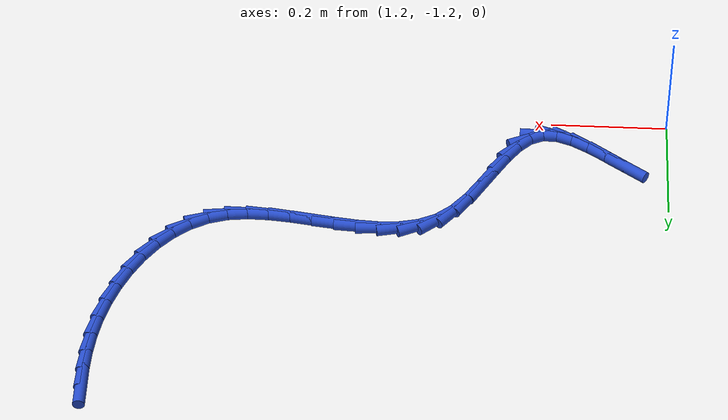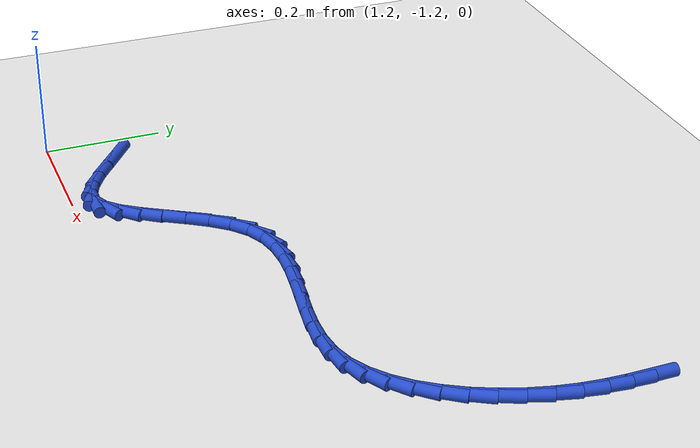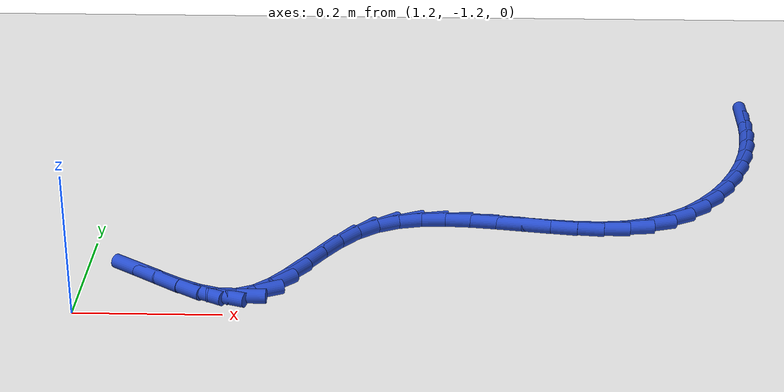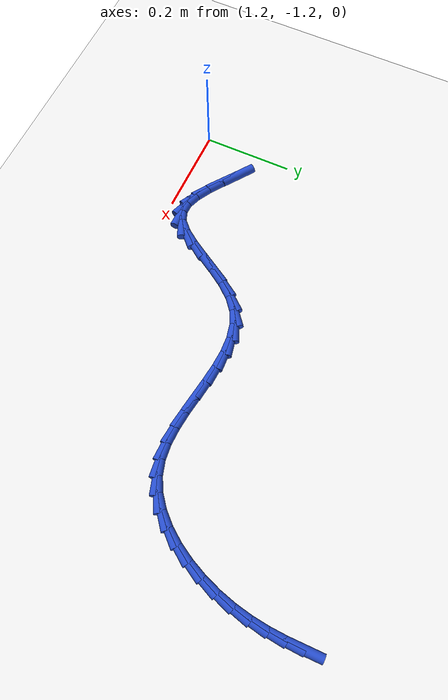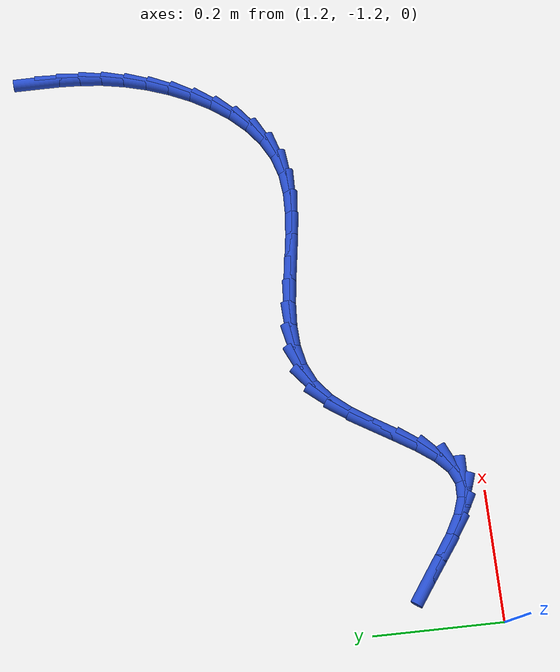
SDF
<sdf version="1.6">
 <world name="default">
  <model name="ground_plane">
   <static>1</static>
   <link name="link">
    <collision name="collision">
     <geometry><plane><normal>0 0 1</normal><size>100 100</size></plane></geometry>
     <surface><friction><ode><mu>100</mu><mu2>50</mu2></ode></friction></surface>
    </collision>
    <visual name="visual">
     <cast_shadows>0</cast_shadows>
     <geometry><plane><normal>0 0 1</normal><size>100 100</size></plane></geometry>
     <material>
      <script><uri>file://media/materials/scripts/gazebo.material</uri><name>Gazebo/WhiteGlow</name></script>
     </material>
    </visual>
   </link>
  </model>
  <model name="line">
   <link name="link_131">
    <pose>2.149427050742619 -0.5623251771961122 0.01 0 1.57 -1.5558904530222313</pose>
    <collision name="collision">
     <geometry><cylinder><radius>0.01</radius><length>0.08</length></cylinder></geometry>
    </collision>
    <visual name="visual">
     <material>
      <script><name>Gazebo/Blue</name><uri>file://media/materials/scripts/gazebo.material</uri></script>
     </material>
     <geometry><cylinder><radius>0.01</radius><length>0.08</length></cylinder></geometry>
    </visual>
   </link>
   <link name="link_132">
    <pose>2.1499527398226106 -0.5975898087104652 0.01 0 1.57 1.5350946256101157</pose>
    <collision name="collision">
     <geometry><cylinder><radius>0.01</radius><length>0.08</length></cylinder></geometry>
    </collision>
    <visual name="visual">
     <material>
      <script><name>Gazebo/Blue</name><uri>file://media/materials/scripts/gazebo.material</uri></script>
     </material>
     <geometry><cylinder><radius>0.01</radius><length>0.08</length></cylinder></geometry>
    </visual>
   </link>
   <link name="link_133">
    <pose>2.1486809618925897 -0.6331970067151078 0.01 0 1.57 1.4717896424177106</pose>
    <collision name="collision">
     <geometry><cylinder><radius>0.01</radius><length>0.08</length></cylinder></geometry>
    </collision>
    <visual name="visual">
     <material>
      <script><name>Gazebo/Blue</name><uri>file://media/materials/scripts/gazebo.material</uri></script>
     </material>
     <geometry><cylinder><radius>0.01</radius><length>0.08</length></cylinder></geometry>
    </visual>
   </link>
   <link name="link_134">
    <pose>2.1451028321051258 -0.6692191281908983 0.01 0 1.57 1.3974444540627173</pose>
    <collision name="collision">
     <geometry><cylinder><radius>0.01</radius><length>0.08</length></cylinder></geometry>
    </collision>
    <visual name="visual">
     <material>
      <script><name>Gazebo/Blue</name><uri>file://media/materials/scripts/gazebo.material</uri></script>
     </material>
     <geometry><cylinder><radius>0.01</radius><length>0.08</length></cylinder></geometry>
    </visual>
   </link>
   <link name="link_135">
    <pose>2.1387097735405796 -0.7057280554204465 0.01 0 1.57 1.3166770986733027</pose>
    <collision name="collision">
     <geometry><cylinder><radius>0.01</radius><length>0.08</length></cylinder></geometry>
    </collision>
    <visual name="visual">
     <material>
      <script><name>Gazebo/Blue</name><uri>file://media/materials/scripts/gazebo.material</uri></script>
     </material>
     <geometry><cylinder><radius>0.01</radius><length>0.08</length></cylinder></geometry>
    </visual>
   </link>
   <link name="link_136">
    <pose>2.129141360175407 -0.7425672828183761 0.01 0 1.57 1.23480271486897</pose>
    <collision name="collision">
     <geometry><cylinder><radius>0.01</radius><length>0.08</length></cylinder></geometry>
    </collision>
    <visual name="visual">
     <material>
      <script><name>Gazebo/Blue</name><uri>file://media/materials/scripts/gazebo.material</uri></script>
     </material>
     <geometry><cylinder><radius>0.01</radius><length>0.08</length></cylinder></geometry>
    </visual>
   </link>
   <link name="link_137">
    <pose>2.116422615321883 -0.7789861001448539 0.01 0 1.57 1.1488030224359165</pose>
    <collision name="collision">
     <geometry><cylinder><radius>0.01</radius><length>0.08</length></cylinder></geometry>
    </collision>
    <visual name="visual">
     <material>
      <script><name>Gazebo/Blue</name><uri>file://media/materials/scripts/gazebo.material</uri></script>
     </material>
     <geometry><cylinder><radius>0.01</radius><length>0.08</length></cylinder></geometry>
    </visual>
   </link>
   <link name="link_138">
    <pose>2.100640446960835 -0.8141383964038998 0.01 0 1.57 1.0544181953158507</pose>
    <collision name="collision">
     <geometry><cylinder><radius>0.01</radius><length>0.08</length></cylinder></geometry>
    </collision>
    <visual name="visual">
     <material>
      <script><name>Gazebo/Blue</name><uri>file://media/materials/scripts/gazebo.material</uri></script>
     </material>
     <geometry><cylinder><radius>0.01</radius><length>0.08</length></cylinder></geometry>
    </visual>
   </link>
   <link name="link_139">
    <pose>2.0818817630730875 -0.8471780605995347 0.01 0 1.57 0.9469916291609757</pose>
    <collision name="collision">
     <geometry><cylinder><radius>0.01</radius><length>0.08</length></cylinder></geometry>
    </collision>
    <visual name="visual">
     <material>
      <script><name>Gazebo/Blue</name><uri>file://media/materials/scripts/gazebo.material</uri></script>
     </material>
     <geometry><cylinder><radius>0.01</radius><length>0.08</length></cylinder></geometry>
    </visual>
   </link>
   <link name="link_140">
    <pose>2.0602334716394695 -0.877258981735777 0.01 0 1.57 0.8213610060553331</pose>
    <collision name="collision">
     <geometry><cylinder><radius>0.01</radius><length>0.08</length></cylinder></geometry>
    </collision>
    <visual name="visual">
     <material>
      <script><name>Gazebo/Blue</name><uri>file://media/materials/scripts/gazebo.material</uri></script>
     </material>
     <geometry><cylinder><radius>0.01</radius><length>0.08</length></cylinder></geometry>
    </visual>
   </link>
   <link name="link_141">
    <pose>2.0357824806408065 -0.9035350488166478 0.01 0 1.57 0.6723048850731338</pose>
    <collision name="collision">
     <geometry><cylinder><radius>0.01</radius><length>0.08</length></cylinder></geometry>
    </collision>
    <visual name="visual">
     <material>
      <script><name>Gazebo/Blue</name><uri>file://media/materials/scripts/gazebo.material</uri></script>
     </material>
     <geometry><cylinder><radius>0.01</radius><length>0.08</length></cylinder></geometry>
    </visual>
   </link>
   <link name="link_142">
    <pose>2.0086156980579255 -0.9251601508461671 0.01 0 1.57 0.4961296646622059</pose>
    <collision name="collision">
     <geometry><cylinder><radius>0.01</radius><length>0.08</length></cylinder></geometry>
    </collision>
    <visual name="visual">
     <material>
      <script><name>Gazebo/Blue</name><uri>file://media/materials/scripts/gazebo.material</uri></script>
     </material>
     <geometry><cylinder><radius>0.01</radius><length>0.08</length></cylinder></geometry>
    </visual>
   </link>
   <link name="link_143">
    <pose>1.9788200318716516 -0.9412881768283549 0.01 0 1.57 0.29558082370996813</pose>
    <collision name="collision">
     <geometry><cylinder><radius>0.01</radius><length>0.08</length></cylinder></geometry>
    </collision>
    <visual name="visual">
     <material>
      <script><name>Gazebo/Blue</name><uri>file://media/materials/scripts/gazebo.material</uri></script>
     </material>
     <geometry><cylinder><radius>0.01</radius><length>0.08</length></cylinder></geometry>
    </visual>
   </link>
   <link name="link_144">
    <pose>1.946494169432706 -0.951131427342371 0.01 0 1.57 0.11268478314308578</pose>
    <collision name="collision">
     <geometry><cylinder><radius>0.01</radius><length>0.08</length></cylinder></geometry>
    </collision>
    <visual name="visual">
     <material>
      <script><name>Gazebo/Blue</name><uri>file://media/materials/scripts/gazebo.material</uri></script>
     </material>
     <geometry><cylinder><radius>0.01</radius><length>0.08</length></cylinder></geometry>
    </visual>
   </link>
   <link name="link_145">
    <pose>1.9119660017536835 -0.9550387787809637 0.01 0 1.57 -0.017884306180233303</pose>
    <collision name="collision">
     <geometry><cylinder><radius>0.01</radius><length>0.08</length></cylinder></geometry>
    </collision>
    <visual name="visual">
     <material>
      <script><name>Gazebo/Blue</name><uri>file://media/materials/scripts/gazebo.material</uri></script>
     </material>
     <geometry><cylinder><radius>0.01</radius><length>0.08</length></cylinder></geometry>
    </visual>
   </link>
   <link name="link_146">
    <pose>1.8757715931359484 -0.9543913978725089 0.01 0 1.57 -0.10104150479388169</pose>
    <collision name="collision">
     <geometry><cylinder><radius>0.01</radius><length>0.08</length></cylinder></geometry>
    </collision>
    <visual name="visual">
     <material>
      <script><name>Gazebo/Blue</name><uri>file://media/materials/scripts/gazebo.material</uri></script>
     </material>
     <geometry><cylinder><radius>0.01</radius><length>0.08</length></cylinder></geometry>
    </visual>
   </link>
   <link name="link_147">
    <pose>1.8384545689600302 -0.9506079452476701 0.01 0 1.57 -0.14414997741747798</pose>
    <collision name="collision">
     <geometry><cylinder><radius>0.01</radius><length>0.08</length></cylinder></geometry>
    </collision>
    <visual name="visual">
     <material>
      <script><name>Gazebo/Blue</name><uri>file://media/materials/scripts/gazebo.material</uri></script>
     </material>
     <geometry><cylinder><radius>0.01</radius><length>0.08</length></cylinder></geometry>
    </visual>
   </link>
   <link name="link_148">
    <pose>1.800558554606455 -0.9451070815371098 0.01 0 1.57 -0.15172250576620536</pose>
    <collision name="collision">
     <geometry><cylinder><radius>0.01</radius><length>0.08</length></cylinder></geometry>
    </collision>
    <visual name="visual">
     <material>
      <script><name>Gazebo/Blue</name><uri>file://media/materials/scripts/gazebo.material</uri></script>
     </material>
     <geometry><cylinder><radius>0.01</radius><length>0.08</length></cylinder></geometry>
    </visual>
   </link>
   <link name="link_149">
    <pose>1.7626271754557528 -0.9393074673714913 0.01 0 1.57 -0.12440272568773303</pose>
    <collision name="collision">
     <geometry><cylinder><radius>0.01</radius><length>0.08</length></cylinder></geometry>
    </collision>
    <visual name="visual">
     <material>
      <script><name>Gazebo/Blue</name><uri>file://media/materials/scripts/gazebo.material</uri></script>
     </material>
     <geometry><cylinder><radius>0.01</radius><length>0.08</length></cylinder></geometry>
    </visual>
   </link>
   <link name="link_150">
    <pose>1.725204056888451 -0.9346277633814779 0.01 0 1.57 -0.0588010019017511</pose>
    <collision name="collision">
     <geometry><cylinder><radius>0.01</radius><length>0.08</length></cylinder></geometry>
    </collision>
    <visual name="visual">
     <material>
      <script><name>Gazebo/Blue</name><uri>file://media/materials/scripts/gazebo.material</uri></script>
     </material>
     <geometry><cylinder><radius>0.01</radius><length>0.08</length></cylinder></geometry>
    </visual>
   </link>
   <link name="link_151">
    <pose>1.688832824285078 -0.9324866301977325 0.01 0 1.57 0.05217576785564212</pose>
    <collision name="collision">
     <geometry><cylinder><radius>0.01</radius><length>0.08</length></cylinder></geometry>
    </collision>
    <visual name="visual">
     <material>
      <script><name>Gazebo/Blue</name><uri>file://media/materials/scripts/gazebo.material</uri></script>
     </material>
     <geometry><cylinder><radius>0.01</radius><length>0.08</length></cylinder></geometry>
    </visual>
   </link>
   <link name="link_152">
    <pose>1.6540571030261606 -0.9343027284509181 0.01 0 1.57 0.21689928609205894</pose>
    <collision name="collision">
     <geometry><cylinder><radius>0.01</radius><length>0.08</length></cylinder></geometry>
    </collision>
    <visual name="visual">
     <material>
      <script><name>Gazebo/Blue</name><uri>file://media/materials/scripts/gazebo.material</uri></script>
     </material>
     <geometry><cylinder><radius>0.01</radius><length>0.08</length></cylinder></geometry>
    </visual>
   </link>
   <link name="link_153">
    <pose>1.6214205184922283 -0.9414947187716979 0.01 0 1.57 0.4368489898031812</pose>
    <collision name="collision">
     <geometry><cylinder><radius>0.01</radius><length>0.08</length></cylinder></geometry>
    </collision>
    <visual name="visual">
     <material>
      <script><name>Gazebo/Blue</name><uri>file://media/materials/scripts/gazebo.material</uri></script>
     </material>
     <geometry><cylinder><radius>0.01</radius><length>0.08</length></cylinder></geometry>
    </visual>
   </link>
   <link name="link_154">
    <pose>1.5914666960638095 -0.9554812617907351 0.01 0 1.57 0.6882550809156981</pose>
    <collision name="collision">
     <geometry><cylinder><radius>0.01</radius><length>0.08</length></cylinder></geometry>
    </collision>
    <visual name="visual">
     <material>
      <script><name>Gazebo/Blue</name><uri>file://media/materials/scripts/gazebo.material</uri></script>
     </material>
     <geometry><cylinder><radius>0.01</radius><length>0.08</length></cylinder></geometry>
    </visual>
   </link>
   <link name="link_155">
    <pose>1.5646851662748127 -0.977506573960824 0.01 0 1.57 0.8813464803772628</pose>
    <collision name="collision">
     <geometry><cylinder><radius>0.01</radius><length>0.08</length></cylinder></geometry>
    </collision>
    <visual name="visual">
     <material>
      <script><name>Gazebo/Blue</name><uri>file://media/materials/scripts/gazebo.material</uri></script>
     </material>
     <geometry><cylinder><radius>0.01</radius><length>0.08</length></cylinder></geometry>
    </visual>
   </link>
   <link name="link_156">
    <pose>1.5408298626457568 -1.0064427305001549 0.01 0 1.57 0.9890948867282379</pose>
    <collision name="collision">
     <geometry><cylinder><radius>0.01</radius><length>0.08</length></cylinder></geometry>
    </collision>
    <visual name="visual">
     <material>
      <script><name>Gazebo/Blue</name><uri>file://media/materials/scripts/gazebo.material</uri></script>
     </material>
     <geometry><cylinder><radius>0.01</radius><length>0.08</length></cylinder></geometry>
    </visual>
   </link>
   <link name="link_157">
    <pose>1.5191239848106917 -1.0394503046580732 0.01 0 1.57 1.034169320916871</pose>
    <collision name="collision">
     <geometry><cylinder><radius>0.01</radius><length>0.08</length></cylinder></geometry>
    </collision>
    <visual name="visual">
     <material>
      <script><name>Gazebo/Blue</name><uri>file://media/materials/scripts/gazebo.material</uri></script>
     </material>
     <geometry><cylinder><radius>0.01</radius><length>0.08</length></cylinder></geometry>
    </visual>
   </link>
   <link name="link_158">
    <pose>1.4987789836347791 -1.0736519824458988 0.01 0 1.57 1.024482776170637</pose>
    <collision name="collision">
     <geometry><cylinder><radius>0.01</radius><length>0.08</length></cylinder></geometry>
    </collision>
    <visual name="visual">
     <material>
      <script><name>Gazebo/Blue</name><uri>file://media/materials/scripts/gazebo.material</uri></script>
     </material>
     <geometry><cylinder><radius>0.01</radius><length>0.08</length></cylinder></geometry>
    </visual>
   </link>
   <link name="link_159">
    <pose>1.4790063099831785 -1.1061704498749496 0.01 0 1.57 0.9500985019549082</pose>
    <collision name="collision">
     <geometry><cylinder><radius>0.01</radius><length>0.08</length></cylinder></geometry>
    </collision>
    <visual name="visual">
     <material>
      <script><name>Gazebo/Blue</name><uri>file://media/materials/scripts/gazebo.material</uri></script>
     </material>
     <geometry><cylinder><radius>0.01</radius><length>0.08</length></cylinder></geometry>
    </visual>
   </link>
   <link name="link_160">
    <pose>1.45901741472105 -1.1341283929565456 0.01 0 1.57 0.7739913286534829</pose>
    <collision name="collision">
     <geometry><cylinder><radius>0.01</radius><length>0.08</length></cylinder></geometry>
    </collision>
    <visual name="visual">
     <material>
      <script><name>Gazebo/Blue</name><uri>file://media/materials/scripts/gazebo.material</uri></script>
     </material>
     <geometry><cylinder><radius>0.01</radius><length>0.08</length></cylinder></geometry>
    </visual>
   </link>
   <link name="link_161">
    <pose>1.4380237487135556 -1.154648497702004 0.01 0 1.57 0.4237094662430254</pose>
    <collision name="collision">
     <geometry><cylinder><radius>0.01</radius><length>0.08</length></cylinder></geometry>
    </collision>
    <visual name="visual">
     <material>
      <script><name>Gazebo/Blue</name><uri>file://media/materials/scripts/gazebo.material</uri></script>
     </material>
     <geometry><cylinder><radius>0.01</radius><length>0.08</length></cylinder></geometry>
    </visual>
   </link>
   <link name="link_162">
    <pose>1.4152490316830841 -1.1649205597278347 0.01 0 1.57 -0.024601071636201864</pose>
    <collision name="collision">
     <geometry><cylinder><radius>0.01</radius><length>0.08</length></cylinder></geometry>
    </collision>
    <visual name="visual">
     <material>
      <script><name>Gazebo/Blue</name><uri>file://media/materials/scripts/gazebo.material</uri></script>
     </material>
     <geometry><cylinder><radius>0.01</radius><length>0.08</length></cylinder></geometry>
    </visual>
   </link>
   <link name="link_163">
    <pose>1.3903141809831983 -1.1643070118988832 0.01 0 1.57 -0.3397612124659523</pose>
    <collision name="collision">
     <geometry><cylinder><radius>0.01</radius><length>0.08</length></cylinder></geometry>
    </collision>
    <visual name="visual">
     <material>
      <script><name>Gazebo/Blue</name><uri>file://media/materials/scripts/gazebo.material</uri></script>
     </material>
     <geometry><cylinder><radius>0.01</radius><length>0.08</length></cylinder></geometry>
    </visual>
   </link>
   <link name="link_164">
    <pose>1.3633141763443566 -1.1547633679476674 0.01 0 1.57 -0.514646696655447</pose>
    <collision name="collision">
     <geometry><cylinder><radius>0.01</radius><length>0.08</length></cylinder></geometry>
    </collision>
    <visual name="visual">
     <material>
      <script><name>Gazebo/Blue</name><uri>file://media/materials/scripts/gazebo.material</uri></script>
     </material>
     <geometry><cylinder><radius>0.01</radius><length>0.08</length></cylinder></geometry>
    </visual>
   </link>
   <link name="link_165">
    <pose>1.3343717902753423 -1.1383971657394847 0.01 0 1.57 -0.6007925189532767</pose>
    <collision name="collision">
     <geometry><cylinder><radius>0.01</radius><length>0.08</length></cylinder></geometry>
    </collision>
    <visual name="visual">
     <material>
      <script><name>Gazebo/Blue</name><uri>file://media/materials/scripts/gazebo.material</uri></script>
     </material>
     <geometry><cylinder><radius>0.01</radius><length>0.08</length></cylinder></geometry>
    </visual>
   </link>
   <link name="link_166">
    <pose>1.303609795284938 -1.1173159431396325 0.01 0 1.57 -0.6304522979396691</pose>
    <collision name="collision">
     <geometry><cylinder><radius>0.01</radius><length>0.08</length></cylinder></geometry>
    </collision>
    <visual name="visual">
     <material>
      <script><name>Gazebo/Blue</name><uri>file://media/materials/scripts/gazebo.material</uri></script>
     </material>
     <geometry><cylinder><radius>0.01</radius><length>0.08</length></cylinder></geometry>
    </visual>
   </link>
   <link name="link_167">
    <pose>1.2711509638819272 -1.0936272380134084 0.01 0 1.57 -0.6178998515241395</pose>
    <collision name="collision">
     <geometry><cylinder><radius>0.01</radius><length>0.08</length></cylinder></geometry>
    </collision>
    <visual name="visual">
     <material>
      <script><name>Gazebo/Blue</name><uri>file://media/materials/scripts/gazebo.material</uri></script>
     </material>
     <geometry><cylinder><radius>0.01</radius><length>0.08</length></cylinder></geometry>
    </visual>
   </link>
  </model>
 </world>
</sdf>
